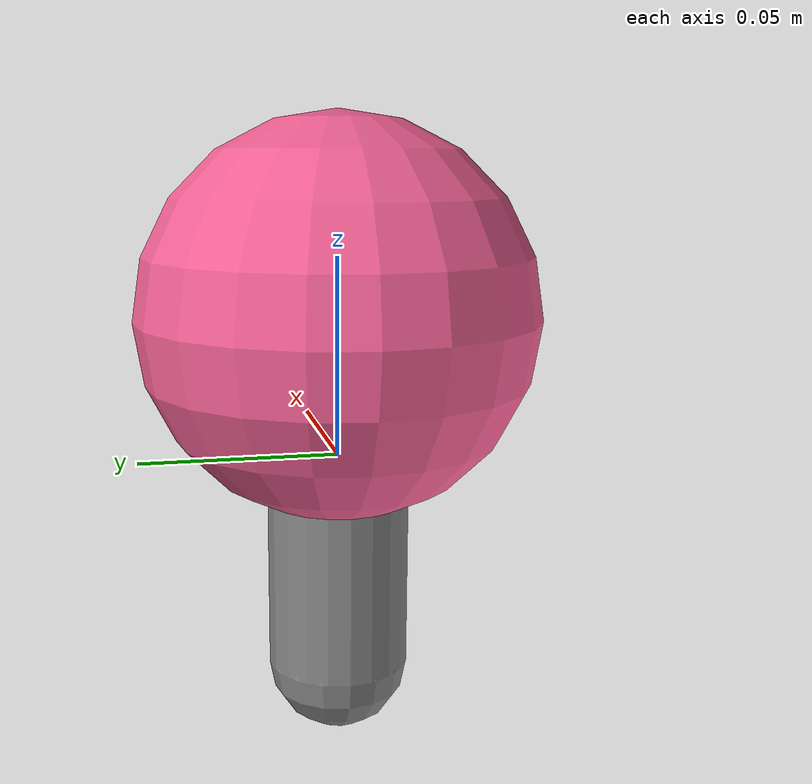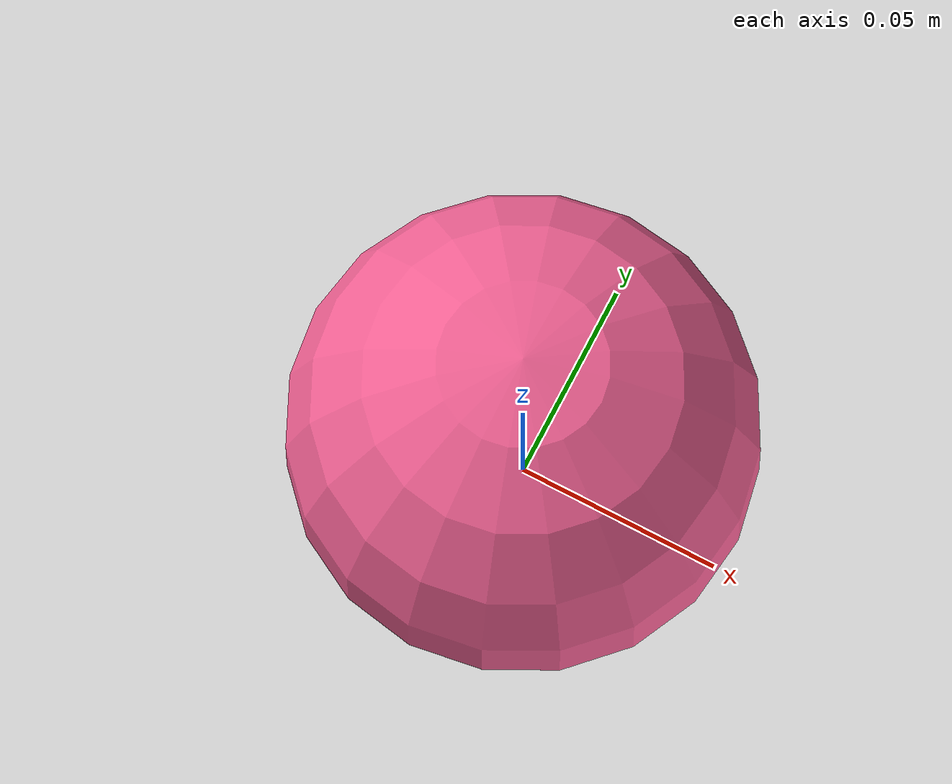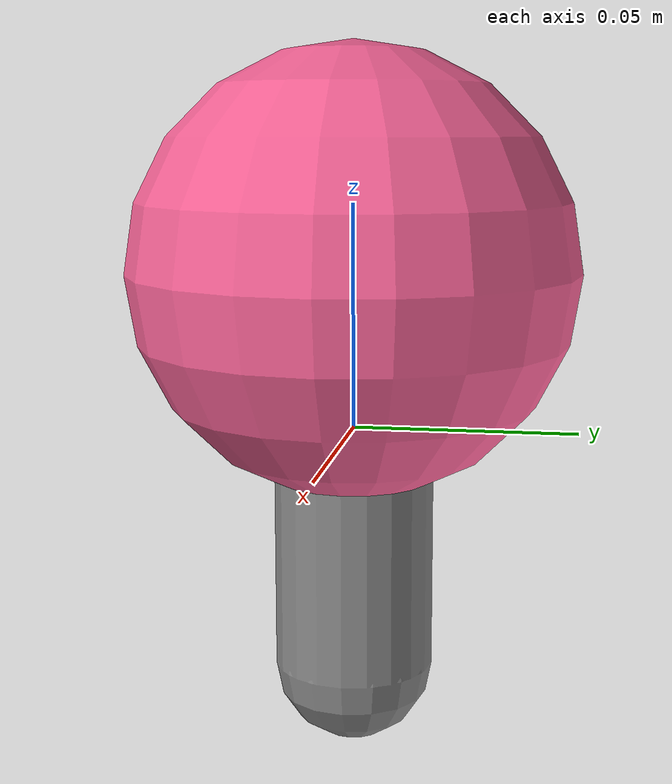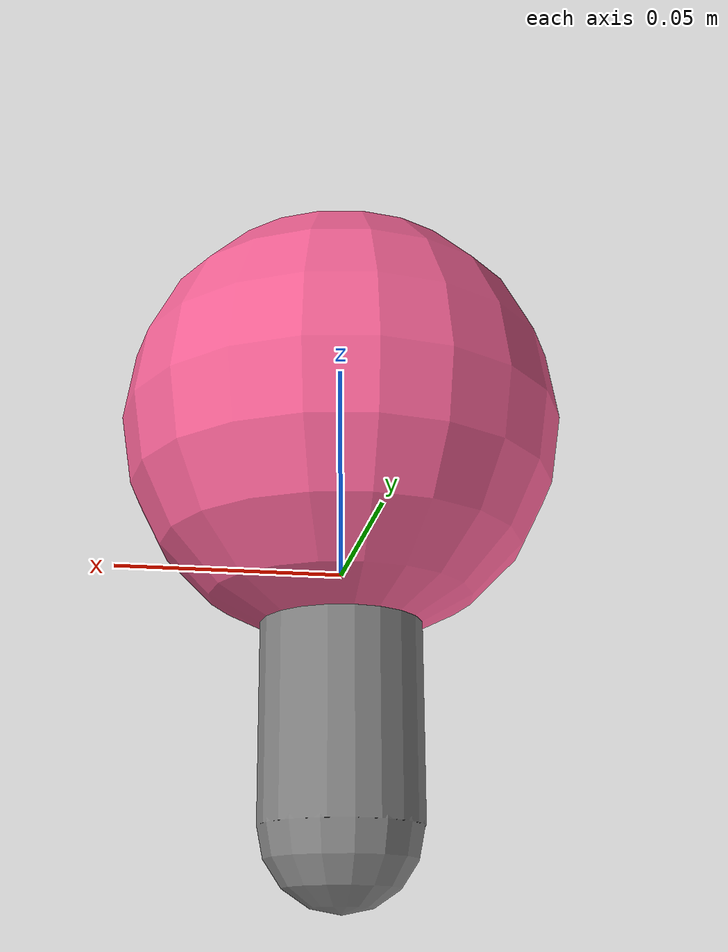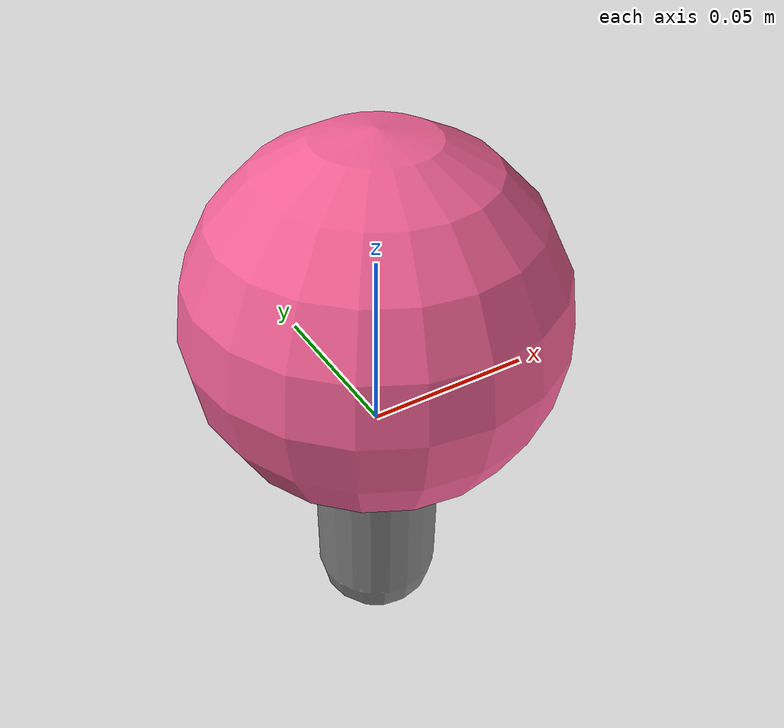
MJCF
<?xml version="1.0" encoding="UTF-8"?>
<!-- Clean-room source-only fallback for a blooming VLABench flower. -->
<mujoco model="libero_vlabench_bloom_flower_primitive">
  <worldbody>
    <body>
      <body name="object">
        <geom name="bloom_stem_visual" type="capsule" group="1" contype="0" conaffinity="0"
              fromto="0 0 -0.055 0 0 0.020" size="0.009" rgba="0.12 0.52 0.16 1"/>
        <geom name="bloom_petals_visual" type="sphere" group="1" contype="0" conaffinity="0"
              pos="0 0 0.035" size="0.050" rgba="0.95 0.38 0.58 1"/>
        <geom name="bloom_collision" type="capsule" group="0"
              fromto="0 0 -0.055 0 0 0.035" size="0.018" mass="0.06"/>
      </body>
      <site name="bottom_site" pos="0 0 -0.055" size="0.005" rgba="0 0 0 0"/>
      <site name="top_site" pos="0 0 0.085" size="0.005" rgba="0 0 0 0"/>
      <site name="horizontal_radius_site" pos="0.050 0 0" size="0.005" rgba="0 0 0 0"/>
    </body>
  </worldbody>
</mujoco>
